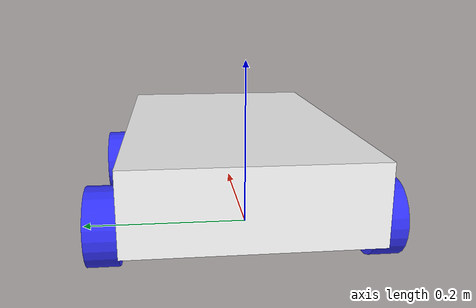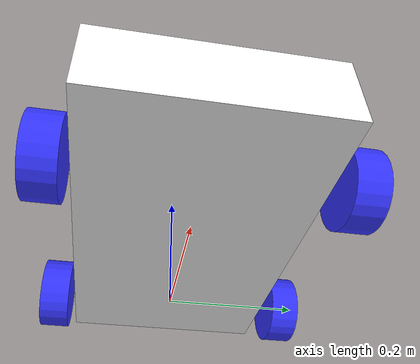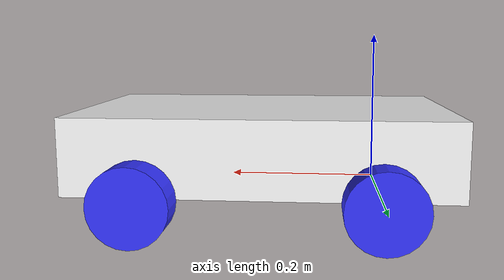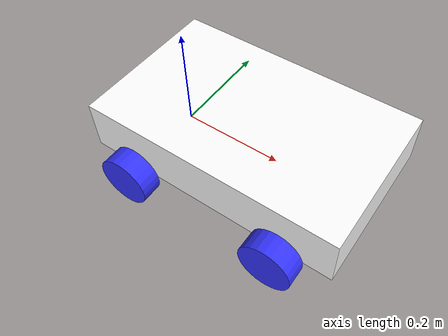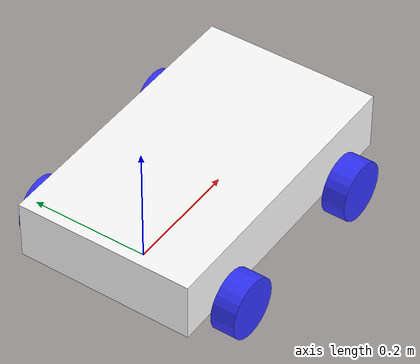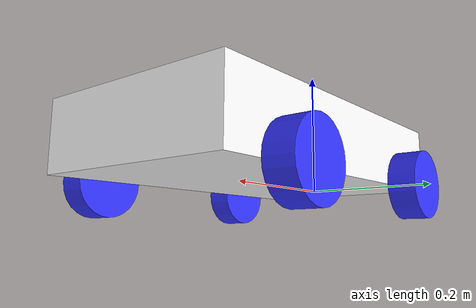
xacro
<?xml version="1.0"?>
<robot xmlns:xacro="http://www.ros.org/wiki/xacro">

    <xacro:include filename="inertia.marcos.xacro"/>

    <material name= "white">
        <color rgba= "1 1 1 1"/>
    </material>

    <material name= "blue">
        <color rgba= "0.2 0.2 1 1"/>
    </material>

    <material name= "orange">
        <color rgba= "1 0.3 0.1 1"/>
    </material>

    <material name= "black">
        <color rgba= "0 0 0 1"/>
    </material>

    <material name= "red">
        <color rgba= "1 0 0 1"/>
    </material>

    <!--base link-->
    <link name="base_link">

    </link>

    <!-- foot print joint-->

    <joint name="base_footprint_joint" type="fixed">
        <parent link="base_link"/>
        <child link="base_footprint"/>
        <origin xyz="0 0 0" rpy="0 0 0"/>
    </joint>

    <link name="base_footprint">
    </link>

    <!-- cHASIS JOINT-->
    <joint name="chassis_joint" type="fixed">
        <parent link="base_link"/>
        <child link="chassis"/>
        <origin xyz="-0.1 0 0"/>
    </joint>

    <!--chassis link-->
    <link name="chassis">
        <visual>
            <origin xyz="0.25 0 0.05"/>
            <geometry>
                <box size="0.5 0.3 0.10"/>
            </geometry>
            <material name="white"/>
        </visual>
        <collision>
            <origin xyz="0.25 0 0.05"/>
            <geometry>
                <box size="0.5 0.3 0.10"/>
            </geometry>
        </collision>
        <xacro:inertial_box mass="0.5" x="0.5" y="0.3" z="0.10">
            <origin xyz="0.25 0 0.05" rpy="0 0 0"/>
        </xacro:inertial_box>
    </link>

    <gazebo reference="chassis">
        <material>Gazebo/White</material>
    </gazebo>

    <!--left down wheel joint-->
    <joint name="left_down_wheel_joint" type="continuous">
        <parent link="base_link"/>
        <child link="left_down_wheel_link"/>
        <origin xyz="0 0.175 0" rpy="-${pi/2} 0 0"/>
        <axis xyz="0 0 1"/>
    </joint>

    <!--left down wheel link-->
    <link name="left_down_wheel_link">
        <visual>
            <origin xyz="0 0 0"/>
            <geometry>
                <cylinder radius="0.05" length="0.04"/>
            </geometry>
            <material name="blue"/>
        </visual>
        <collision>
            <origin xyz="0 0 0"/>
            <geometry>
                <cylinder radius="0.05" length="0.04"/>
            </geometry>
        </collision>
        <xacro:inertial_cylinder mass="0.1" radius="0.05" length="0.04">
            <origin xyz="0 0 0" rpy="0 0 0"/>
        </xacro:inertial_cylinder>
    </link>

    <gazebo reference="left_down_wheel_link">
        <material>Gazebo/Blue</material>
    </gazebo>

    <!--right down wheel joint-->
    <joint name="right_down_wheel_joint" type="continuous">
        <parent link="base_link"/>
        <child link="right_down_wheel_link"/>
        <origin xyz="0 -0.175 0" rpy="${pi/2} 0 0"/>
        <axis xyz="0 0 -1"/>
    </joint>

    <!--right down wheel link-->
    <link name="right_down_wheel_link">
        <visual>
            <origin xyz="0 0 0"/>
            <geometry>
                <cylinder radius="0.05" length="0.04"/>
            </geometry>
            <material name="blue"/>
        </visual>
        <collision>
            <origin xyz="0 0 0"/>
            <geometry>
                <cylinder radius="0.05" length="0.04"/>
            </geometry>
        </collision>
        <xacro:inertial_cylinder mass="0.1" radius="0.05" length="0.04">
            <origin xyz="0 0 0" rpy="0 0 0"/>
        </xacro:inertial_cylinder>
    </link>

    <gazebo reference="right_down_wheel_link">
        <material>Gazebo/Blue</material>
    </gazebo>

    <!--left up wheel joint-->
    <joint name="left_up_wheel_joint" type="continuous">
        <parent link="base_link"/>
        <child link="left_up_wheel_link"/>
        <origin xyz="0.3 0.175 0" rpy="-${pi/2} 0 0"/>
        <axis xyz="0 0 1"/>
    </joint>

    <!--left up wheel link-->
    <link name="left_up_wheel_link">
        <visual>
            <origin xyz="0 0 0"/>
            <geometry>
                <cylinder radius="0.05" length="0.04"/>
            </geometry>
            <material name="blue"/>
        </visual>
        <collision>
            <origin xyz="0 0 0"/>
            <geometry>
                <cylinder radius="0.05" length="0.04"/>
            </geometry>
        </collision>
        <xacro:inertial_cylinder mass="0.1" radius="0.05" length="0.04">
            <origin xyz="0 0 0" rpy="0 0 0"/>
        </xacro:inertial_cylinder>
    </link>

    <gazebo reference="left_up_wheel_link">
        <material>Gazebo/Blue</material>
    </gazebo>

    <!--right up wheel joint-->
    <joint name="right_up_wheel_joint" type="continuous">
        <parent link="base_link"/>
        <child link="right_up_wheel_link"/>
        <origin xyz="0.3 -0.175 0" rpy="${pi/2} 0 0"/>
        <axis xyz="0 0 -1"/>
    </joint>

    <!--right up wheel link-->
    <link name="right_up_wheel_link">
        <visual>
            <origin xyz="0 0 0"/>
            <geometry>
                <cylinder radius="0.05" length="0.04"/>
            </geometry>
            <material name="blue"/>
        </visual>
        <collision>
            <origin xyz="0 0 0"/>
            <geometry>
                <cylinder radius="0.05" length="0.04"/>
            </geometry>
        </collision>
        <xacro:inertial_cylinder mass="0.1" radius="0.05" length="0.04">
            <origin xyz="0 0 0" rpy="0 0 0"/>
        </xacro:inertial_cylinder>
    </link>

    <gazebo reference="right_up_wheel_link">
        <material>Gazebo/Blue</material>
    </gazebo>

</robot>
